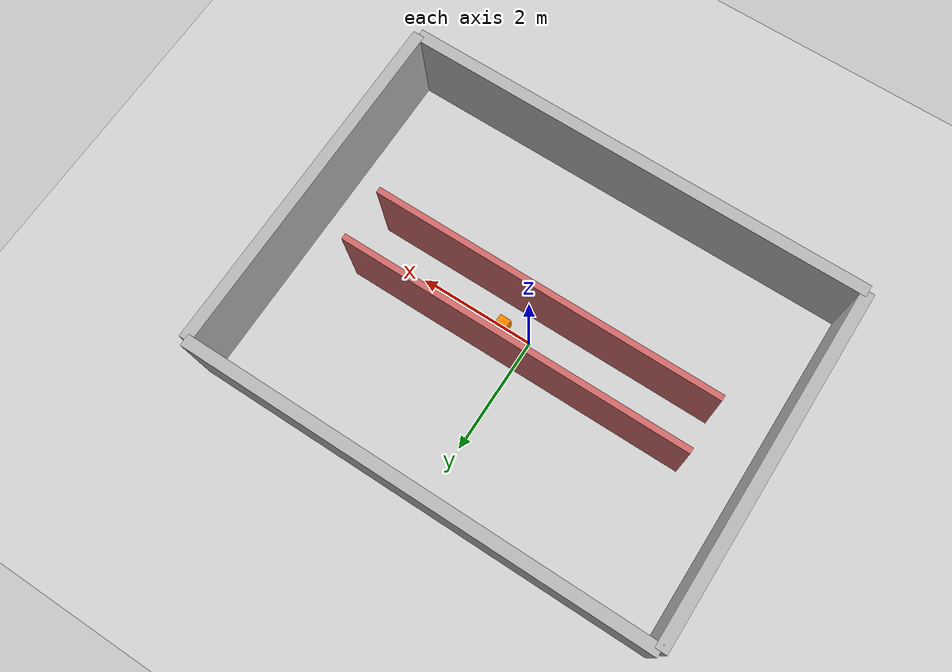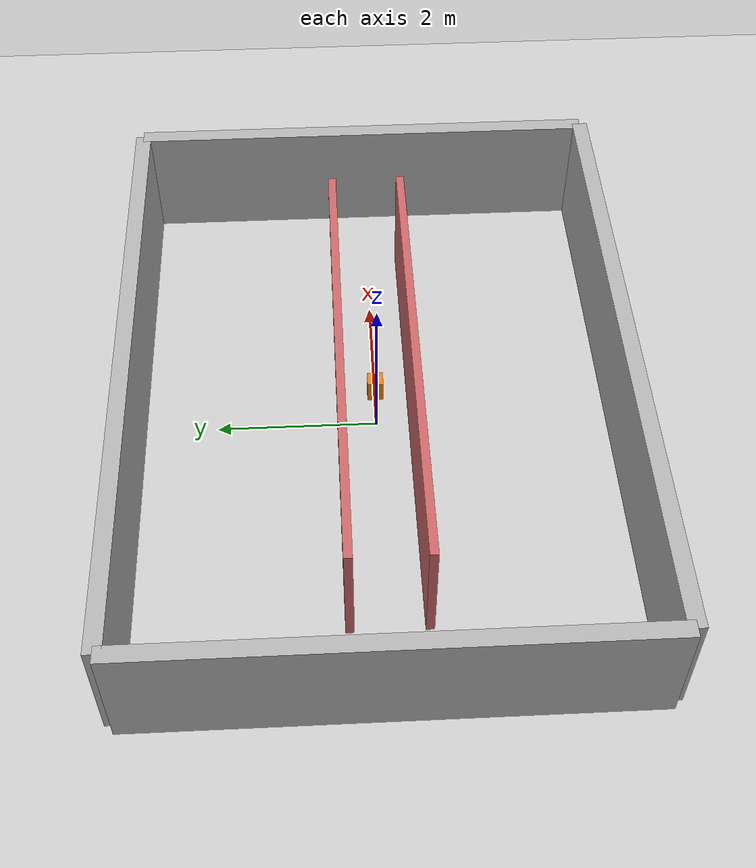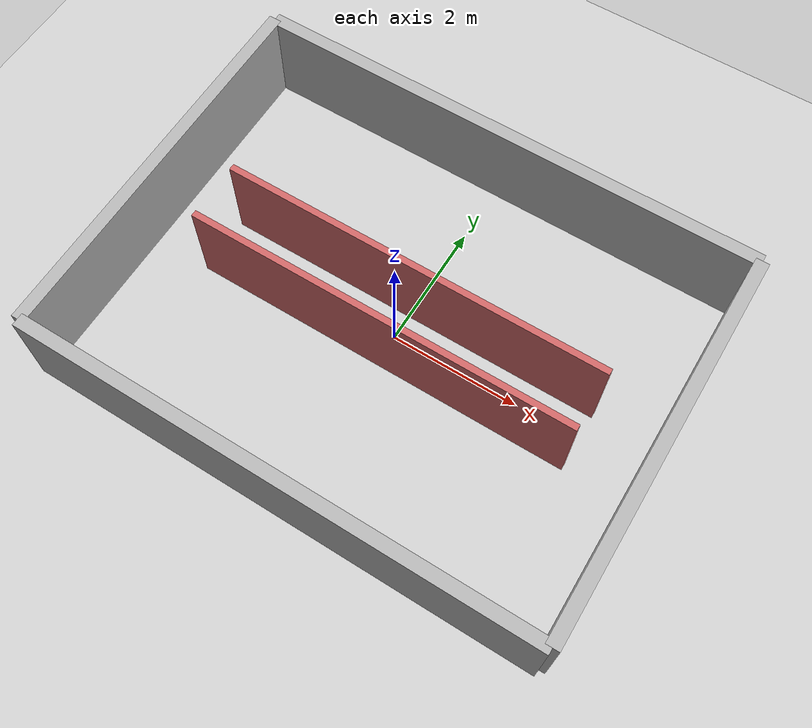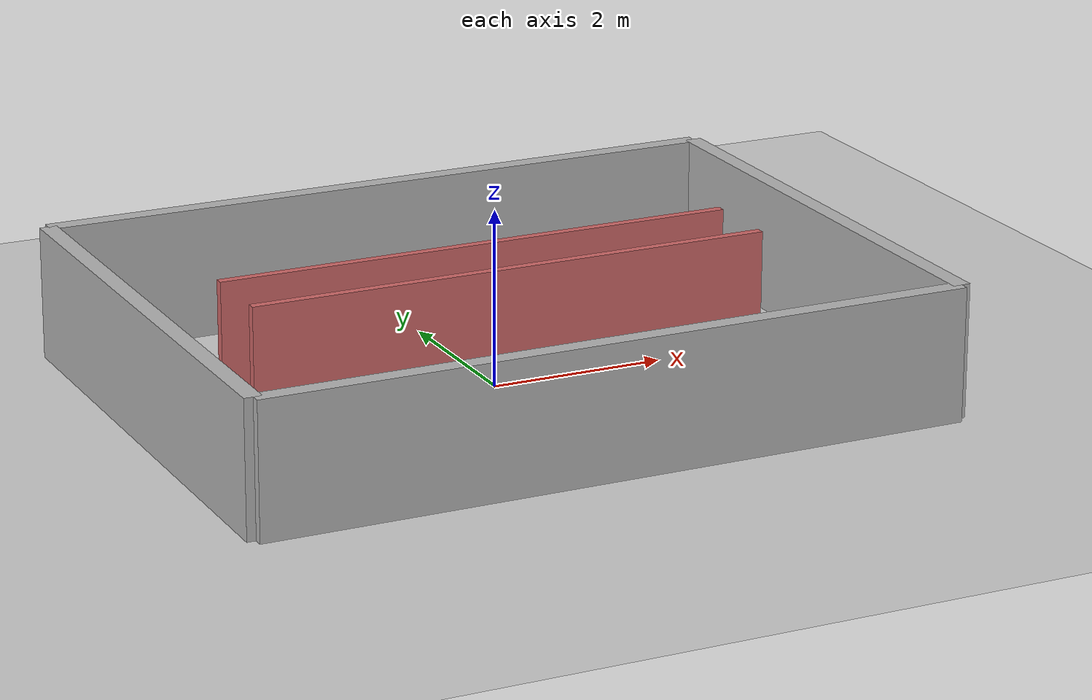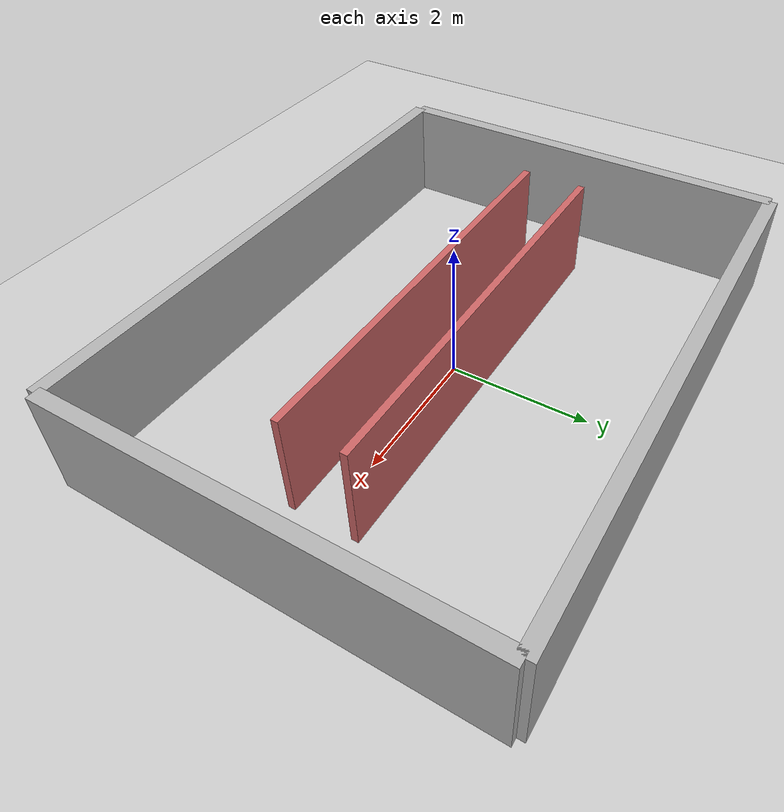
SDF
<?xml version="1.0" ?>
<sdf version="1.8">
  <world name="narrow_passage">
    <gravity>0 0 -9.81</gravity>

    <physics name="1ms" type="dart">
      <max_step_size>0.001</max_step_size>
      <real_time_factor>1.0</real_time_factor>
      <dart>
        <collision_detector>bullet</collision_detector>
      </dart>
    </physics>

    <plugin
      filename="gz-sim-physics-system"
      name="gz::sim::systems::Physics">
    </plugin>
    <plugin
      filename="gz-sim-sensors-system"
      name="gz::sim::systems::Sensors">
      <render_engine>ogre2</render_engine>
    </plugin>
    <plugin
      filename="gz-sim-contact-system"
      name="gz::sim::systems::Contact">
    </plugin>
    <plugin
      filename="gz-sim-user-commands-system"
      name="gz::sim::systems::UserCommands">
    </plugin>
    <plugin
      filename="gz-sim-scene-broadcaster-system"
      name="gz::sim::systems::SceneBroadcaster">
    </plugin>
    <scene>
      <ambient>0.4 0.4 0.4</ambient>
      <background>0.7 0.7 0.7</background>
    </scene>
    <light type="directional" name="sun">
      <pose>0 0 10 0 0 0</pose>
      <diffuse>0.8 0.8 0.8 1</diffuse>
      <specular>0.2 0.2 0.2 1</specular>
      <direction>-0.5 0.1 -1</direction>
    </light>

    <model name="ground_plane">
      <static>true</static>
      <link name="link">
        <collision name="collision">
          <geometry>
            <plane>
              <normal>0 0 1</normal>
            </plane>
          </geometry>
        </collision>
        <visual name="visual">
          <geometry>
            <plane>
              <normal>0 0 1</normal>
              <size>100 100</size>
            </plane>
          </geometry>
          <material>
            <ambient>0.8 0.8 0.8 1</ambient>
            <diffuse>0.8 0.8 0.8 1</diffuse>
          </material>
        </visual>
      </link>
    </model>

    <model name="wall_back">
      <static>true</static>
      <pose>4.0 0 0.75 0 0 0</pose>
      <link name="link">
        <collision name="collision"><geometry><box><size>0.2 6.0 1.5</size></box></geometry></collision>
        <visual name="visual"><geometry><box><size>0.2 6.0 1.5</size></box></geometry>
          <material><ambient>0.7 0.7 0.7</ambient><diffuse>0.7 0.7 0.7</diffuse></material>
        </visual>
      </link>
    </model>
    <model name="wall_front">
      <static>true</static>
      <pose>-4.0 0 0.75 0 0 0</pose>
      <link name="link">
        <collision name="collision"><geometry><box><size>0.2 6.0 1.5</size></box></geometry></collision>
        <visual name="visual"><geometry><box><size>0.2 6.0 1.5</size></box></geometry>
          <material><ambient>0.7 0.7 0.7</ambient><diffuse>0.7 0.7 0.7</diffuse></material>
        </visual>
      </link>
    </model>
    <model name="wall_left">
      <static>true</static>
      <pose>0 3.0 0.75 0 0 1.5708</pose>
      <link name="link">
        <collision name="collision"><geometry><box><size>0.2 8.0 1.5</size></box></geometry></collision>
        <visual name="visual"><geometry><box><size>0.2 8.0 1.5</size></box></geometry>
          <material><ambient>0.7 0.7 0.7</ambient><diffuse>0.7 0.7 0.7</diffuse></material>
        </visual>
      </link>
    </model>
    <model name="wall_right">
      <static>true</static>
      <pose>0 -3.0 0.75 0 0 1.5708</pose>
      <link name="link">
        <collision name="collision"><geometry><box><size>0.2 8.0 1.5</size></box></geometry></collision>
        <visual name="visual"><geometry><box><size>0.2 8.0 1.5</size></box></geometry>
          <material><ambient>0.7 0.7 0.7</ambient><diffuse>0.7 0.7 0.7</diffuse></material>
        </visual>
      </link>
    </model>

    <model name="corridor_left">
      <static>true</static>
      <pose>0 0.45 0.75 0 0 0</pose>
      <link name="link">
        <collision name="collision"><geometry><box><size>6.0 0.1 1.5</size></box></geometry></collision>
        <visual name="visual"><geometry><box><size>6.0 0.1 1.5</size></box></geometry>
          <material><ambient>0.8 0.4 0.4</ambient><diffuse>0.8 0.4 0.4</diffuse></material>
        </visual>
      </link>
    </model>
    <model name="corridor_right">
      <static>true</static>
      <pose>0 -0.45 0.75 0 0 0</pose>
      <link name="link">
        <collision name="collision"><geometry><box><size>6.0 0.1 1.5</size></box></geometry></collision>
        <visual name="visual"><geometry><box><size>6.0 0.1 1.5</size></box></geometry>
          <material><ambient>0.8 0.4 0.4</ambient><diffuse>0.8 0.4 0.4</diffuse></material>
        </visual>
      </link>
    </model>

    <model name="box_obstacle">
      <static>true</static>
      <pose>0.5 0 0.15 0 0 0</pose>
      <link name="link">
        <collision name="collision"><geometry><box><size>0.2 0.2 0.3</size></box></geometry></collision>
        <visual name="visual"><geometry><box><size>0.2 0.2 0.3</size></box></geometry>
          <material><ambient>1.0 0.5 0.0</ambient><diffuse>1.0 0.5 0.0</diffuse></material>
        </visual>
      </link>
    </model>
  </world>
</sdf>
